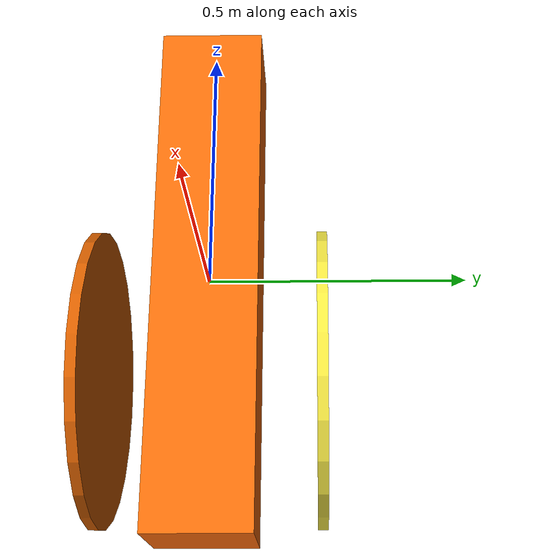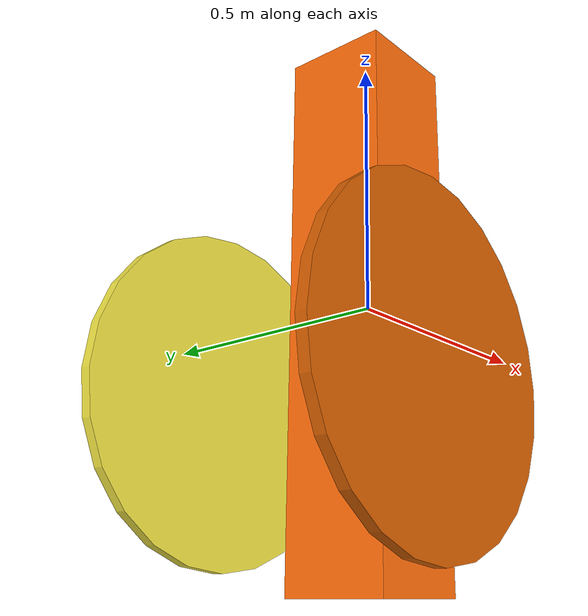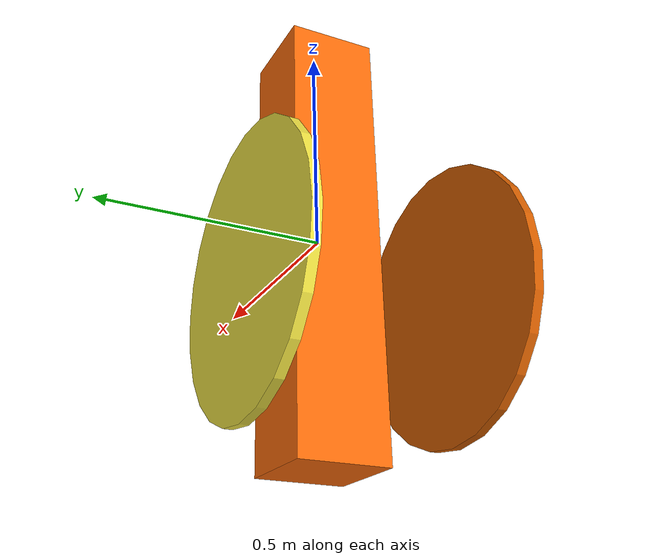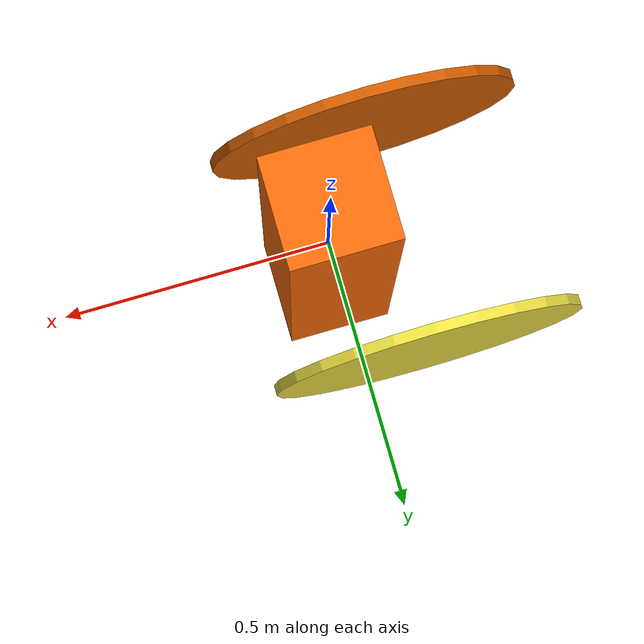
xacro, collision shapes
<?xml version="1.0"?>
<robot name="motor" xmlns:xacro="http://www.ros.org/wiki/xacro">
    <material name="Orange">
        <color rgba="${255/255} ${108/255} ${10/255} 1.0"/>
    </material>

    <xacro:property name="wheel_mass"         value="2.000"/>
    <xacro:property name="wheel_radius"       value="0.300"/>
    <xacro:property name="wheel_thickness"    value="0.020"/>
    <xacro:property name="wheel_deadplay"   value="0.0"/> <!-- deadplay of wheels in radian -->

    <xacro:include filename="$(find gazebo_ros_motors)/xacro/inertia_calc.xacro"/>
    <xacro:include filename="$(find gazebo_ros_motors)/xacro/motor.xacro"/>

  <link name="base_footprint"/>

  <joint name="base_joint" type="fixed">
      <parent link="base_footprint"/>
      <child link="base_link"/>
      <origin rpy="0 0 0" xyz="0 0 0"/>
  </joint>

  <link name="base_link">
      <visual>
        <geometry>
          <box size="0.2 0.2 1"/>
        </geometry>
        <material name="Orange" />
      </visual>
      <collision>
        <geometry>
            <box size="0.2 0.2 1"/>
        </geometry>
      </collision>
      <inertial>
        <geometry>
            <box size="0.2 0.2 1"/>
        </geometry>
        <mass value="1000"/>
        <xacro:box_inertia m="1000" x="0.2" y="0.2" z="1"/>
      </inertial>
  </link>

    <joint name="left_wheel_joint" type="continuous">
        <parent link="base_link"/>
        <child link="left_wheel_axle"/>
        <origin rpy="${-pi/2} 0 0" xyz="-0.135 0.22 -0.16"/>
        <axis xyz="0 0 1"/>
    </joint>

    <link name="left_wheel_axle">
        <collision>
            <geometry>
                <box size="0 0 0"/>
            </geometry>
        </collision>
        <inertial>
            <geometry>
                <box size="0 0 1"/>
            </geometry>
            <mass value="1"/>
            <inertia ixx="0"  ixy="0"  ixz="0" iyy="0" iyz="0" izz="0" />
        </inertial>
    </link>

    <joint name="left_wheel_deadplay" type="revolute">
        <parent link="left_wheel_axle" />
        <child link="left_wheel" />
        <axis xyz="0 0 1" />
        <limit lower="${-wheel_deadplay/2}" upper="${wheel_deadplay/2}"  effort="100000" velocity="1000000" />
    </joint>

    <link name="left_wheel">
        <visual>
            <origin xyz="0.3013 -0.3013 -0.54" rpy="${pi/2} ${-pi/2} ${-pi/2}"/>
            <geometry>
                <mesh filename="file://$(find nitrum)/meshes/nitrum_handrim.stl" scale="0.001 0.001 0.001"/>
            </geometry>
        </visual>
        <collision>
            <origin rpy="0 0 0" xyz="0 0 0"/>
            <geometry>
                <cylinder length="${wheel_thickness}" radius="${wheel_radius}"/>
            </geometry>
            <surface>
            </surface>
        </collision>
        <inertial>
            <mass value="${wheel_mass}"/>
            <xacro:cylinder_inertia m="4" r="${wheel_radius}" h="${wheel_thickness}"/>
        </inertial>
    </link>

    <joint name="right_wheel_joint" type="continuous">
        <parent link="base_link"/>
        <child link="right_wheel_axle"/>
        <origin rpy="${-pi/2} 0 0" xyz="-0.135 -0.22 -0.16"/>
        <axis xyz="0 0 1"/>
    </joint>

    <link name="right_wheel_axle">
        <collision>
            <geometry>
                <box size="0 0 0"/>
            </geometry>
        </collision>
        <inertial>
            <geometry>
                <box size="0 0 1"/>
            </geometry>
            <mass value="1"/>
            <inertia ixx="0"  ixy="0"  ixz="0" iyy="0" iyz="0" izz="0" />
        </inertial>
    </link>

    <joint name="right_wheel_deadplay" type="revolute">
        <parent link="right_wheel_axle" />
        <child link="right_wheel" />
        <axis xyz="0 0 1" />
        <limit lower="${-wheel_deadplay/2}" upper="${wheel_deadplay/2}"  effort="100000" velocity="1000000" />
    </joint>

    <link name="right_wheel">
        <visual>
            <origin xyz="0.3013 0.3013 0.54" rpy="${pi/2} ${pi/2} ${-pi/2}"/>
            <geometry>
                <mesh filename="file://$(find nitrum)/meshes/nitrum_handrim.stl" scale="0.001 0.001 0.001"/>
            </geometry>
        </visual>
        <collision>
            <origin rpy="0 0 0" xyz="0 0 -0.005"/>
            <geometry>
                <cylinder length="${wheel_thickness}" radius="${wheel_radius}"/>
            </geometry>
        </collision>
        <inertial>
            <mass value="${wheel_mass}"/>
            <xacro:cylinder_inertia m="4" r="${wheel_radius}" h="${wheel_thickness}"/>
        </inertial>
    </link>

    <xacro:bldc_motor motor_name="right_motor" motor_joint="right_wheel_joint" child_link="right_wheel_axle">
        <xacro:property name="params_yaml" value="$(find gazebo_ros_motors)/params/bldc_motor.yaml"/>
    </xacro:bldc_motor>

    <xacro:bldc_motor motor_name="left_motor" motor_joint="left_wheel_joint" child_link="left_wheel_axle">
        <xacro:property name="params_yaml" value="$(find gazebo_ros_motors)/params/bldc_motor.yaml"/>
    </xacro:bldc_motor>

</robot>
